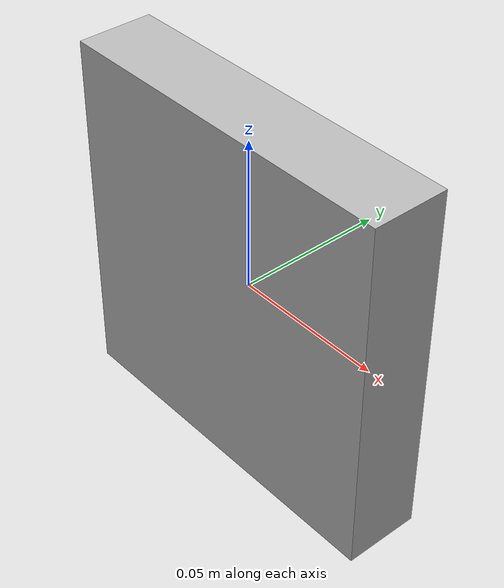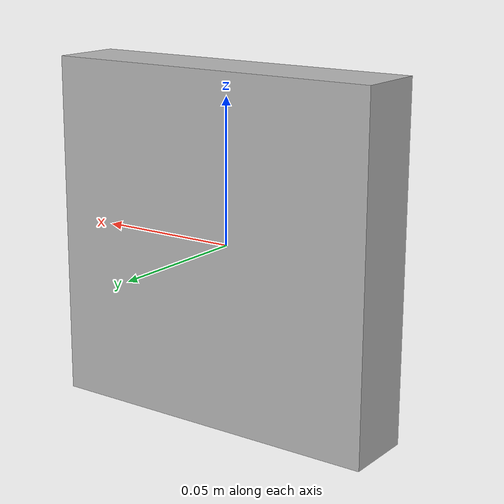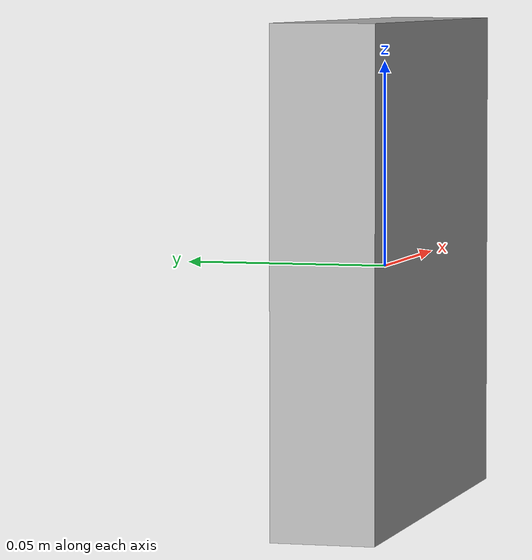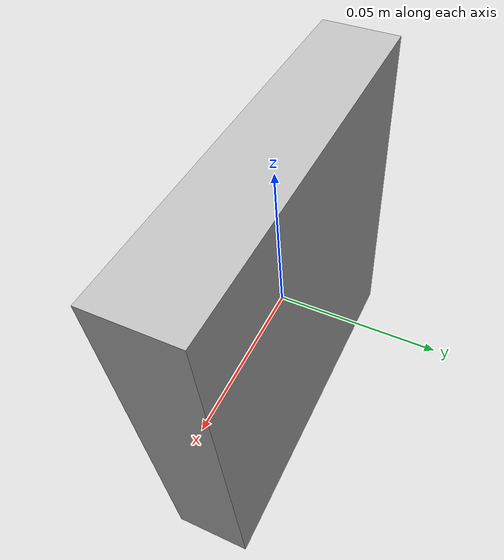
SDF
<?xml version="1.0" ?>
<sdf version="1.6">
  <model name="apriltag_1">
    <static>true</static>
    <link name="box">
      <pose>0 0 0 0 0 0</pose>
      <collision name="collision">
        <geometry>
          <box>
            <size>0.12 0.025 0.12</size>
          </box>
        </geometry>
      </collision>
      <visual name="visual">
        <geometry>
          <box>
            <size>0.12 0.025 0.12</size>
          </box>
        </geometry>
        <material>
          <script>
            <uri>model://apriltag_1/materials/scripts</uri>
            <uri>model://apriltag_1/materials/textures</uri>
            <name>apriltag_1</name>
          </script>
        </material>
      </visual>
    </link>
  </model>
</sdf>
